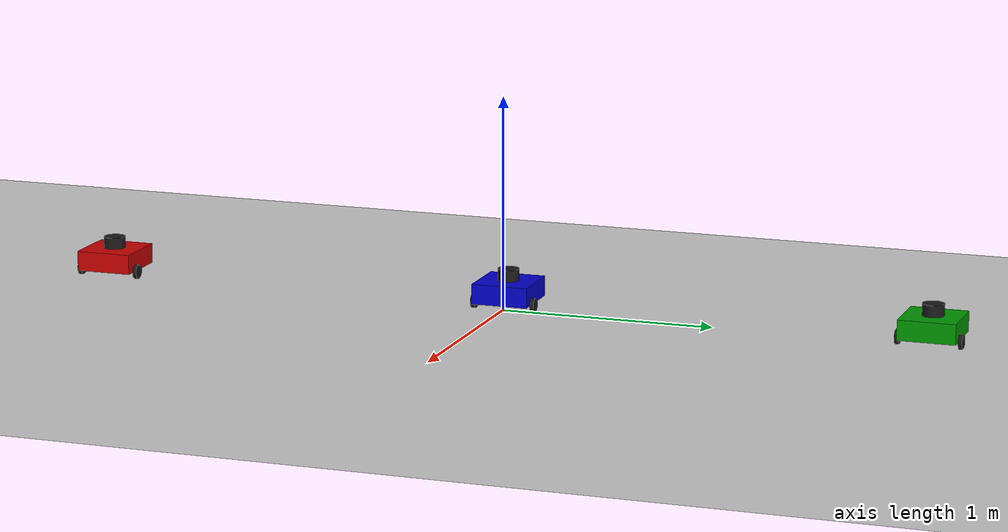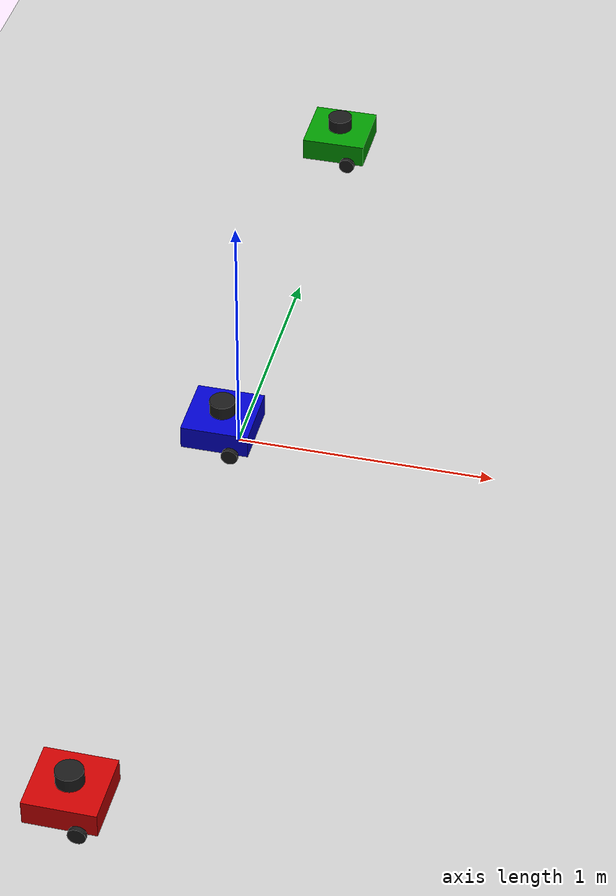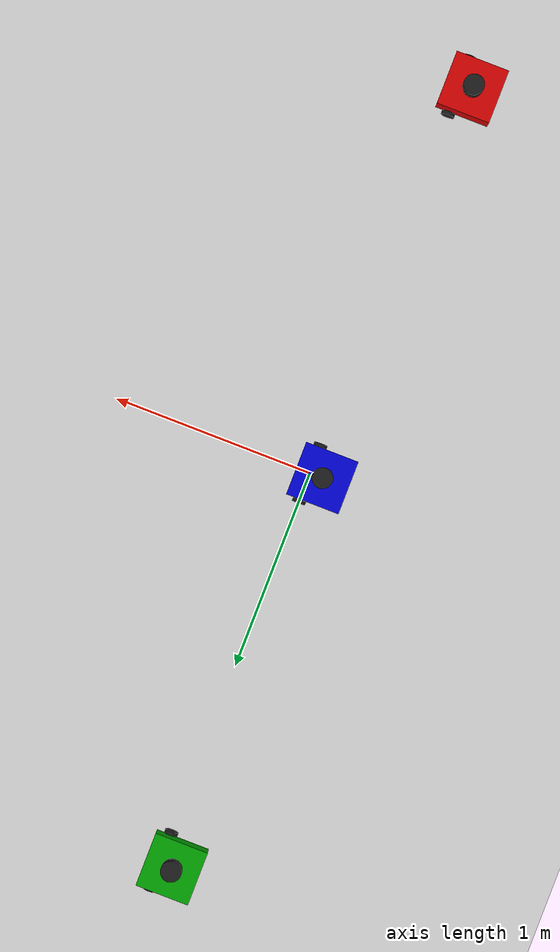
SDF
<?xml version="1.0" ?>
<sdf version="1.9">
  <world name="ahe_inspection_mvp">

    <!-- Physics -->
    <physics name="1ms" type="ignored">
      <max_step_size>0.001</max_step_size>
      <real_time_factor>1.0</real_time_factor>
    </physics>

    <!-- World-level plugins (headless-compatible — no render engine required for CPU lidar) -->
    <plugin filename="gz-sim-physics-system"
            name="gz::sim::systems::Physics"/>
    <plugin filename="gz-sim-user-commands-system"
            name="gz::sim::systems::UserCommands"/>
    <plugin filename="gz-sim-scene-broadcaster-system"
            name="gz::sim::systems::SceneBroadcaster"/>
    <plugin filename="gz-sim-sensors-system"
            name="gz::sim::systems::Sensors">
    </plugin>
    <plugin filename="gz-sim-imu-system"
            name="gz::sim::systems::Imu"/>

    <!-- Ambient light -->
    <light type="directional" name="sun">
      <cast_shadows>true</cast_shadows>
      <pose>0 0 10 0 0 0</pose>
      <diffuse>0.8 0.8 0.8 1</diffuse>
      <specular>0.2 0.2 0.2 1</specular>
      <direction>-0.5 0.1 -0.9</direction>
    </light>

    <!-- Ground plane -->
    <model name="ground_plane">
      <static>true</static>
      <link name="link">
        <collision name="collision">
          <geometry>
            <plane>
              <normal>0 0 1</normal>
              <size>100 100</size>
            </plane>
          </geometry>
        </collision>
        <visual name="visual">
          <geometry>
            <plane>
              <normal>0 0 1</normal>
              <size>100 100</size>
            </plane>
          </geometry>
          <material>
            <ambient>0.8 0.8 0.8 1</ambient>
            <diffuse>0.8 0.8 0.8 1</diffuse>
          </material>
        </visual>
      </link>
    </model>

    <model name="robot_1">
      <pose>0 0 0.033 0 0 0</pose>

      <link name="base_link">
        <inertial>
          <mass>1.3729</mass>
          <inertia>
            <ixx>8.7002e-03</ixx><ixy>0</ixy><ixz>0</ixz>
            <iyy>8.7002e-03</iyy><iyz>0</iyz>
            <izz>1.3677e-02</izz>
          </inertia>
        </inertial>
        <collision name="base_collision">
          <pose>-0.064 0 0.047 0 0 0</pose>
          <geometry><box><size>0.266 0.266 0.094</size></box></geometry>
        </collision>
        <visual name="base_visual">
          <pose>-0.064 0 0.047 0 0 0</pose>
          <geometry><box><size>0.266 0.266 0.094</size></box></geometry>
          <material><ambient>0.0 0.0 0.8 1</ambient><diffuse>0.0 0.0 0.8 1</diffuse></material>
        </visual>
      </link>

      <link name="wheel_left_link">
        <pose>0 0.144 0 -1.5707963 0 0</pose>
        <inertial>
          <mass>0.0284989</mass>
          <inertia>
            <ixx>1.1175e-05</ixx><ixy>0</ixy><ixz>0</ixz>
            <iyy>1.1175e-05</iyy><iyz>0</iyz>
            <izz>2.0399e-05</izz>
          </inertia>
        </inertial>
        <collision name="wheel_left_collision">
          <geometry><cylinder><radius>0.033</radius><length>0.018</length></cylinder></geometry>
          <surface><friction><ode><mu>100</mu><mu2>100</mu2></ode></friction></surface>
        </collision>
        <visual name="wheel_left_visual">
          <geometry><cylinder><radius>0.033</radius><length>0.018</length></cylinder></geometry>
          <material><ambient>0.1 0.1 0.1 1</ambient><diffuse>0.1 0.1 0.1 1</diffuse></material>
        </visual>
      </link>

      <link name="wheel_right_link">
        <pose>0 -0.144 0 -1.5707963 0 0</pose>
        <inertial>
          <mass>0.0284989</mass>
          <inertia>
            <ixx>1.1175e-05</ixx><ixy>0</ixy><ixz>0</ixz>
            <iyy>1.1175e-05</iyy><iyz>0</iyz>
            <izz>2.0399e-05</izz>
          </inertia>
        </inertial>
        <collision name="wheel_right_collision">
          <geometry><cylinder><radius>0.033</radius><length>0.018</length></cylinder></geometry>
          <surface><friction><ode><mu>100</mu><mu2>100</mu2></ode></friction></surface>
        </collision>
        <visual name="wheel_right_visual">
          <geometry><cylinder><radius>0.033</radius><length>0.018</length></cylinder></geometry>
          <material><ambient>0.1 0.1 0.1 1</ambient><diffuse>0.1 0.1 0.1 1</diffuse></material>
        </visual>
      </link>

      <link name="caster_link">
        <pose>-0.135 0 -0.025 0 0 0</pose>
        <inertial>
          <mass>0.005</mass>
          <inertia><ixx>2.0e-07</ixx><ixy>0</ixy><ixz>0</ixz><iyy>2.0e-07</iyy><iyz>0</iyz><izz>2.0e-07</izz></inertia>
        </inertial>
        <collision name="caster_collision">
          <geometry><sphere><radius>0.008</radius></sphere></geometry>
          <surface><friction><ode><mu>0</mu><mu2>0</mu2></ode></friction></surface>
        </collision>
        <visual name="caster_visual">
          <geometry><sphere><radius>0.008</radius></sphere></geometry>
          <material><ambient>0.5 0.5 0.5 1</ambient><diffuse>0.5 0.5 0.5 1</diffuse></material>
        </visual>
      </link>

      <link name="base_scan">
        <pose>-0.064 0 0.122 0 0 0</pose>
        <inertial>
          <mass>0.125</mass>
          <inertia><ixx>5.0e-04</ixx><ixy>0</ixy><ixz>0</ixz><iyy>5.0e-04</iyy><iyz>0</iyz><izz>5.0e-04</izz></inertia>
        </inertial>
        <collision name="lidar_collision">
          <geometry><cylinder><radius>0.0508</radius><length>0.055</length></cylinder></geometry>
        </collision>
        <visual name="lidar_visual">
          <geometry><cylinder><radius>0.0508</radius><length>0.055</length></cylinder></geometry>
          <material><ambient>0.1 0.1 0.1 1</ambient><diffuse>0.1 0.1 0.1 1</diffuse></material>
        </visual>
        <sensor name="lidar_sensor" type="gpu_lidar">
          <always_on>true</always_on>
          <visualize>false</visualize>
          <update_rate>5</update_rate>
          <topic>/model/robot_1/scan</topic>
          <lidar>
            <scan>
              <horizontal>
                <samples>360</samples><resolution>1</resolution>
                <min_angle>0.0</min_angle><max_angle>6.28318530718</max_angle>
              </horizontal>
            </scan>
            <range><min>0.12</min><max>3.5</max><resolution>0.015</resolution></range>
            <noise><type>gaussian</type><mean>0.0</mean><stddev>0.01</stddev></noise>
          </lidar>
        </sensor>
      </link>

      <link name="imu_link">
        <pose>-0.032 0 0.068 0 0 0</pose>
        <inertial>
          <mass>0.001</mass>
          <inertia><ixx>1.0e-09</ixx><ixy>0</ixy><ixz>0</ixz><iyy>1.0e-09</iyy><iyz>0</iyz><izz>1.0e-09</izz></inertia>
        </inertial>
        <sensor name="imu_sensor" type="imu">
          <always_on>true</always_on>
          <update_rate>200</update_rate>
          <topic>/model/robot_1/imu</topic>
        </sensor>
      </link>

      <joint name="wheel_left_joint" type="revolute">
        <parent>base_link</parent><child>wheel_left_link</child>
        <axis><xyz>0 0 1</xyz><dynamics><damping>0.1</damping></dynamics></axis>
      </joint>
      <joint name="wheel_right_joint" type="revolute">
        <parent>base_link</parent><child>wheel_right_link</child>
        <axis><xyz>0 0 1</xyz><dynamics><damping>0.1</damping></dynamics></axis>
      </joint>
      <joint name="caster_joint" type="ball">
        <parent>base_link</parent><child>caster_link</child>
      </joint>
      <joint name="lidar_joint" type="fixed">
        <parent>base_link</parent><child>base_scan</child>
      </joint>
      <joint name="imu_joint" type="fixed">
        <parent>base_link</parent><child>imu_link</child>
      </joint>

      <plugin filename="gz-sim-diff-drive-system" name="gz::sim::systems::DiffDrive">
        <left_joint>wheel_left_joint</left_joint>
        <right_joint>wheel_right_joint</right_joint>
        <wheel_separation>0.287</wheel_separation>
        <wheel_radius>0.033</wheel_radius>
        <odom_publish_frequency>30</odom_publish_frequency>
        <topic>/model/robot_1/cmd_vel</topic>
        <odom_topic>/model/robot_1/odometry</odom_topic>
        <tf_topic>/model/robot_1/tf</tf_topic>
        <frame_id>robot_1/odom</frame_id>
        <child_frame_id>robot_1/base_link</child_frame_id>
        <max_linear_velocity>0.26</max_linear_velocity>
        <max_angular_velocity>1.82</max_angular_velocity>
      </plugin>

      <plugin filename="gz-sim-joint-state-publisher-system" name="gz::sim::systems::JointStatePublisher">
        <topic>/model/robot_1/joint_states</topic>
      </plugin>
    </model>

    <model name="robot_2">
      <pose>0 2.0 0.033 0 0 0</pose>

      <link name="base_link">
        <inertial>
          <mass>1.3729</mass>
          <inertia>
            <ixx>8.7002e-03</ixx><ixy>0</ixy><ixz>0</ixz>
            <iyy>8.7002e-03</iyy><iyz>0</iyz>
            <izz>1.3677e-02</izz>
          </inertia>
        </inertial>
        <collision name="base_collision">
          <pose>-0.064 0 0.047 0 0 0</pose>
          <geometry><box><size>0.266 0.266 0.094</size></box></geometry>
        </collision>
        <visual name="base_visual">
          <pose>-0.064 0 0.047 0 0 0</pose>
          <geometry><box><size>0.266 0.266 0.094</size></box></geometry>
          <material><ambient>0.0 0.6 0.0 1</ambient><diffuse>0.0 0.6 0.0 1</diffuse></material>
        </visual>
      </link>

      <link name="wheel_left_link">
        <pose>0 0.144 0 -1.5707963 0 0</pose>
        <inertial>
          <mass>0.0284989</mass>
          <inertia>
            <ixx>1.1175e-05</ixx><ixy>0</ixy><ixz>0</ixz>
            <iyy>1.1175e-05</iyy><iyz>0</iyz>
            <izz>2.0399e-05</izz>
          </inertia>
        </inertial>
        <collision name="wheel_left_collision">
          <geometry><cylinder><radius>0.033</radius><length>0.018</length></cylinder></geometry>
          <surface><friction><ode><mu>100</mu><mu2>100</mu2></ode></friction></surface>
        </collision>
        <visual name="wheel_left_visual">
          <geometry><cylinder><radius>0.033</radius><length>0.018</length></cylinder></geometry>
          <material><ambient>0.1 0.1 0.1 1</ambient><diffuse>0.1 0.1 0.1 1</diffuse></material>
        </visual>
      </link>

      <link name="wheel_right_link">
        <pose>0 -0.144 0 -1.5707963 0 0</pose>
        <inertial>
          <mass>0.0284989</mass>
          <inertia>
            <ixx>1.1175e-05</ixx><ixy>0</ixy><ixz>0</ixz>
            <iyy>1.1175e-05</iyy><iyz>0</iyz>
            <izz>2.0399e-05</izz>
          </inertia>
        </inertial>
        <collision name="wheel_right_collision">
          <geometry><cylinder><radius>0.033</radius><length>0.018</length></cylinder></geometry>
          <surface><friction><ode><mu>100</mu><mu2>100</mu2></ode></friction></surface>
        </collision>
        <visual name="wheel_right_visual">
          <geometry><cylinder><radius>0.033</radius><length>0.018</length></cylinder></geometry>
          <material><ambient>0.1 0.1 0.1 1</ambient><diffuse>0.1 0.1 0.1 1</diffuse></material>
        </visual>
      </link>

      <link name="caster_link">
        <pose>-0.135 0 -0.025 0 0 0</pose>
        <inertial>
          <mass>0.005</mass>
          <inertia><ixx>2.0e-07</ixx><ixy>0</ixy><ixz>0</ixz><iyy>2.0e-07</iyy><iyz>0</iyz><izz>2.0e-07</izz></inertia>
        </inertial>
        <collision name="caster_collision">
          <geometry><sphere><radius>0.008</radius></sphere></geometry>
          <surface><friction><ode><mu>0</mu><mu2>0</mu2></ode></friction></surface>
        </collision>
        <visual name="caster_visual">
          <geometry><sphere><radius>0.008</radius></sphere></geometry>
          <material><ambient>0.5 0.5 0.5 1</ambient><diffuse>0.5 0.5 0.5 1</diffuse></material>
        </visual>
      </link>

      <link name="base_scan">
        <pose>-0.064 0 0.122 0 0 0</pose>
        <inertial>
          <mass>0.125</mass>
          <inertia><ixx>5.0e-04</ixx><ixy>0</ixy><ixz>0</ixz><iyy>5.0e-04</iyy><iyz>0</iyz><izz>5.0e-04</izz></inertia>
        </inertial>
        <collision name="lidar_collision">
          <geometry><cylinder><radius>0.0508</radius><length>0.055</length></cylinder></geometry>
        </collision>
        <visual name="lidar_visual">
          <geometry><cylinder><radius>0.0508</radius><length>0.055</length></cylinder></geometry>
          <material><ambient>0.1 0.1 0.1 1</ambient><diffuse>0.1 0.1 0.1 1</diffuse></material>
        </visual>
        <sensor name="lidar_sensor" type="gpu_lidar">
          <always_on>true</always_on>
          <visualize>false</visualize>
          <update_rate>5</update_rate>
          <topic>/model/robot_2/scan</topic>
          <lidar>
            <scan>
              <horizontal>
                <samples>360</samples><resolution>1</resolution>
                <min_angle>0.0</min_angle><max_angle>6.28318530718</max_angle>
              </horizontal>
            </scan>
            <range><min>0.12</min><max>3.5</max><resolution>0.015</resolution></range>
            <noise><type>gaussian</type><mean>0.0</mean><stddev>0.01</stddev></noise>
          </lidar>
        </sensor>
      </link>

      <link name="imu_link">
        <pose>-0.032 0 0.068 0 0 0</pose>
        <inertial>
          <mass>0.001</mass>
          <inertia><ixx>1.0e-09</ixx><ixy>0</ixy><ixz>0</ixz><iyy>1.0e-09</iyy><iyz>0</iyz><izz>1.0e-09</izz></inertia>
        </inertial>
        <sensor name="imu_sensor" type="imu">
          <always_on>true</always_on>
          <update_rate>200</update_rate>
          <topic>/model/robot_2/imu</topic>
        </sensor>
      </link>

      <joint name="wheel_left_joint" type="revolute">
        <parent>base_link</parent><child>wheel_left_link</child>
        <axis><xyz>0 0 1</xyz><dynamics><damping>0.1</damping></dynamics></axis>
      </joint>
      <joint name="wheel_right_joint" type="revolute">
        <parent>base_link</parent><child>wheel_right_link</child>
        <axis><xyz>0 0 1</xyz><dynamics><damping>0.1</damping></dynamics></axis>
      </joint>
      <joint name="caster_joint" type="ball">
        <parent>base_link</parent><child>caster_link</child>
      </joint>
      <joint name="lidar_joint" type="fixed">
        <parent>base_link</parent><child>base_scan</child>
      </joint>
      <joint name="imu_joint" type="fixed">
        <parent>base_link</parent><child>imu_link</child>
      </joint>

      <plugin filename="gz-sim-diff-drive-system" name="gz::sim::systems::DiffDrive">
        <left_joint>wheel_left_joint</left_joint>
        <right_joint>wheel_right_joint</right_joint>
        <wheel_separation>0.287</wheel_separation>
        <wheel_radius>0.033</wheel_radius>
        <odom_publish_frequency>30</odom_publish_frequency>
        <topic>/model/robot_2/cmd_vel</topic>
        <odom_topic>/model/robot_2/odometry</odom_topic>
        <tf_topic>/model/robot_2/tf</tf_topic>
        <frame_id>robot_2/odom</frame_id>
        <child_frame_id>robot_2/base_link</child_frame_id>
        <max_linear_velocity>0.26</max_linear_velocity>
        <max_angular_velocity>1.82</max_angular_velocity>
      </plugin>

      <plugin filename="gz-sim-joint-state-publisher-system" name="gz::sim::systems::JointStatePublisher">
        <topic>/model/robot_2/joint_states</topic>
      </plugin>
    </model>

    <model name="robot_3">
      <pose>0 -2.0 0.033 0 0 0</pose>

      <link name="base_link">
        <inertial>
          <mass>1.3729</mass>
          <inertia>
            <ixx>8.7002e-03</ixx><ixy>0</ixy><ixz>0</ixz>
            <iyy>8.7002e-03</iyy><iyz>0</iyz>
            <izz>1.3677e-02</izz>
          </inertia>
        </inertial>
        <collision name="base_collision">
          <pose>-0.064 0 0.047 0 0 0</pose>
          <geometry><box><size>0.266 0.266 0.094</size></box></geometry>
        </collision>
        <visual name="base_visual">
          <pose>-0.064 0 0.047 0 0 0</pose>
          <geometry><box><size>0.266 0.266 0.094</size></box></geometry>
          <material><ambient>0.8 0.0 0.0 1</ambient><diffuse>0.8 0.0 0.0 1</diffuse></material>
        </visual>
      </link>

      <link name="wheel_left_link">
        <pose>0 0.144 0 -1.5707963 0 0</pose>
        <inertial>
          <mass>0.0284989</mass>
          <inertia>
            <ixx>1.1175e-05</ixx><ixy>0</ixy><ixz>0</ixz>
            <iyy>1.1175e-05</iyy><iyz>0</iyz>
            <izz>2.0399e-05</izz>
          </inertia>
        </inertial>
        <collision name="wheel_left_collision">
          <geometry><cylinder><radius>0.033</radius><length>0.018</length></cylinder></geometry>
          <surface><friction><ode><mu>100</mu><mu2>100</mu2></ode></friction></surface>
        </collision>
        <visual name="wheel_left_visual">
          <geometry><cylinder><radius>0.033</radius><length>0.018</length></cylinder></geometry>
          <material><ambient>0.1 0.1 0.1 1</ambient><diffuse>0.1 0.1 0.1 1</diffuse></material>
        </visual>
      </link>

      <link name="wheel_right_link">
        <pose>0 -0.144 0 -1.5707963 0 0</pose>
        <inertial>
          <mass>0.0284989</mass>
          <inertia>
            <ixx>1.1175e-05</ixx><ixy>0</ixy><ixz>0</ixz>
            <iyy>1.1175e-05</iyy><iyz>0</iyz>
            <izz>2.0399e-05</izz>
          </inertia>
        </inertial>
        <collision name="wheel_right_collision">
          <geometry><cylinder><radius>0.033</radius><length>0.018</length></cylinder></geometry>
          <surface><friction><ode><mu>100</mu><mu2>100</mu2></ode></friction></surface>
        </collision>
        <visual name="wheel_right_visual">
          <geometry><cylinder><radius>0.033</radius><length>0.018</length></cylinder></geometry>
          <material><ambient>0.1 0.1 0.1 1</ambient><diffuse>0.1 0.1 0.1 1</diffuse></material>
        </visual>
      </link>

      <link name="caster_link">
        <pose>-0.135 0 -0.025 0 0 0</pose>
        <inertial>
          <mass>0.005</mass>
          <inertia><ixx>2.0e-07</ixx><ixy>0</ixy><ixz>0</ixz><iyy>2.0e-07</iyy><iyz>0</iyz><izz>2.0e-07</izz></inertia>
        </inertial>
        <collision name="caster_collision">
          <geometry><sphere><radius>0.008</radius></sphere></geometry>
          <surface><friction><ode><mu>0</mu><mu2>0</mu2></ode></friction></surface>
        </collision>
        <visual name="caster_visual">
          <geometry><sphere><radius>0.008</radius></sphere></geometry>
          <material><ambient>0.5 0.5 0.5 1</ambient><diffuse>0.5 0.5 0.5 1</diffuse></material>
        </visual>
      </link>

      <link name="base_scan">
        <pose>-0.064 0 0.122 0 0 0</pose>
        <inertial>
          <mass>0.125</mass>
          <inertia><ixx>5.0e-04</ixx><ixy>0</ixy><ixz>0</ixz><iyy>5.0e-04</iyy><iyz>0</iyz><izz>5.0e-04</izz></inertia>
        </inertial>
        <collision name="lidar_collision">
          <geometry><cylinder><radius>0.0508</radius><length>0.055</length></cylinder></geometry>
        </collision>
        <visual name="lidar_visual">
          <geometry><cylinder><radius>0.0508</radius><length>0.055</length></cylinder></geometry>
          <material><ambient>0.1 0.1 0.1 1</ambient><diffuse>0.1 0.1 0.1 1</diffuse></material>
        </visual>
        <sensor name="lidar_sensor" type="gpu_lidar">
          <always_on>true</always_on>
          <visualize>false</visualize>
          <update_rate>5</update_rate>
          <topic>/model/robot_3/scan</topic>
          <lidar>
            <scan>
              <horizontal>
                <samples>360</samples><resolution>1</resolution>
                <min_angle>0.0</min_angle><max_angle>6.28318530718</max_angle>
              </horizontal>
            </scan>
            <range><min>0.12</min><max>3.5</max><resolution>0.015</resolution></range>
            <noise><type>gaussian</type><mean>0.0</mean><stddev>0.01</stddev></noise>
          </lidar>
        </sensor>
      </link>

      <link name="imu_link">
        <pose>-0.032 0 0.068 0 0 0</pose>
        <inertial>
          <mass>0.001</mass>
          <inertia><ixx>1.0e-09</ixx><ixy>0</ixy><ixz>0</ixz><iyy>1.0e-09</iyy><iyz>0</iyz><izz>1.0e-09</izz></inertia>
        </inertial>
        <sensor name="imu_sensor" type="imu">
          <always_on>true</always_on>
          <update_rate>200</update_rate>
          <topic>/model/robot_3/imu</topic>
        </sensor>
      </link>

      <joint name="wheel_left_joint" type="revolute">
        <parent>base_link</parent><child>wheel_left_link</child>
        <axis><xyz>0 0 1</xyz><dynamics><damping>0.1</damping></dynamics></axis>
      </joint>
      <joint name="wheel_right_joint" type="revolute">
        <parent>base_link</parent><child>wheel_right_link</child>
        <axis><xyz>0 0 1</xyz><dynamics><damping>0.1</damping></dynamics></axis>
      </joint>
      <joint name="caster_joint" type="ball">
        <parent>base_link</parent><child>caster_link</child>
      </joint>
      <joint name="lidar_joint" type="fixed">
        <parent>base_link</parent><child>base_scan</child>
      </joint>
      <joint name="imu_joint" type="fixed">
        <parent>base_link</parent><child>imu_link</child>
      </joint>

      <plugin filename="gz-sim-diff-drive-system" name="gz::sim::systems::DiffDrive">
        <left_joint>wheel_left_joint</left_joint>
        <right_joint>wheel_right_joint</right_joint>
        <wheel_separation>0.287</wheel_separation>
        <wheel_radius>0.033</wheel_radius>
        <odom_publish_frequency>30</odom_publish_frequency>
        <topic>/model/robot_3/cmd_vel</topic>
        <odom_topic>/model/robot_3/odometry</odom_topic>
        <tf_topic>/model/robot_3/tf</tf_topic>
        <frame_id>robot_3/odom</frame_id>
        <child_frame_id>robot_3/base_link</child_frame_id>
        <max_linear_velocity>0.26</max_linear_velocity>
        <max_angular_velocity>1.82</max_angular_velocity>
      </plugin>

      <plugin filename="gz-sim-joint-state-publisher-system" name="gz::sim::systems::JointStatePublisher">
        <topic>/model/robot_3/joint_states</topic>
      </plugin>
    </model>

  </world>
</sdf>
